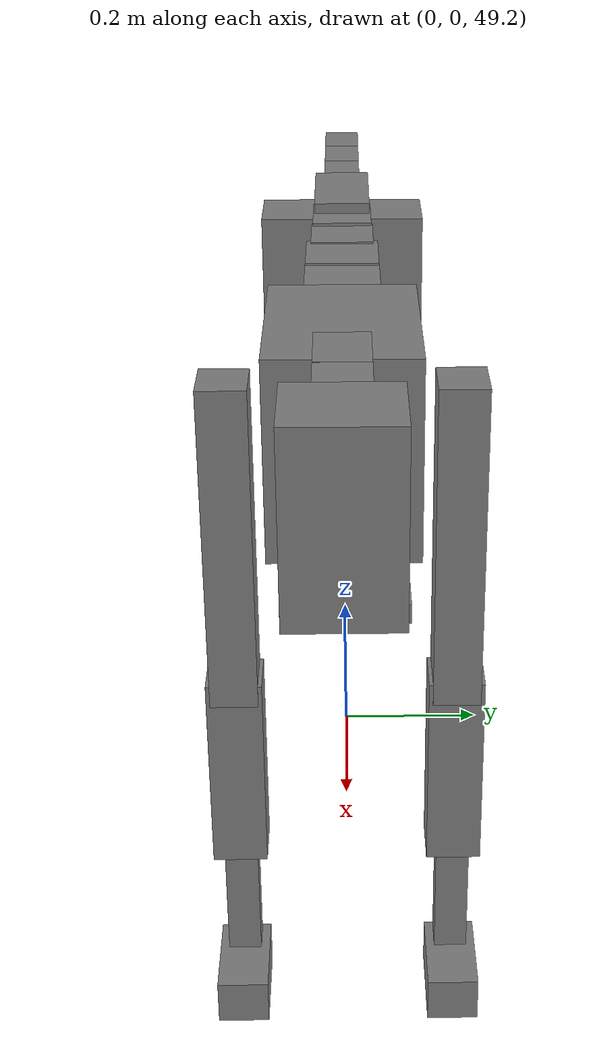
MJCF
<mujoco model="dog">

    <default>
        <joint armature="0.02" stiffness="1" damping="0.2" limited="true"/>
        <geom condim="3" friction="1 0.05 0.05" margin="0.01"/>
        <motor ctrllimited="true" ctrlrange="-1.0 1.0" forcelimited="true" gear="50"/>
    </default>

    <compiler inertiafromgeom="true" angle="radian"/>

    <option timestep="0.016" iterations="50" tolerance="1e-10" solver="Newton" jacobian="dense" cone="pyramidal"/>

    <size nconmax="20000" njmax="60000" nstack="5000000"/>
    <visual>
        <map force="0.1" zfar="30"/>
        <rgba haze="0.15 0.25 0.35 1"/>
        <quality shadowsize="2048"/>
        <global offwidth="800" offheight="800"/>
    </visual>

    <asset>
        <texture type="skybox" builtin="gradient" rgb1="0.3 0.5 0.7" rgb2="0 0 0" width="512" height="512"/>
        <texture name="texplane" type="2d" builtin="checker" rgb1=".2 .3 .4" rgb2=".1 0.15 0.2" width="512" height="512"
                 mark="cross" markrgb=".8 .8 .8"/>
        <texture name="texgeom" type="cube" builtin="flat" mark="cross" width="127" height="1278" rgb1="0.8 0.6 0.4"
                 rgb2="0.8 0.6 0.4" markrgb="1 1 1" random="0.01"/>

        <material name="matplane" reflectance="0.3" texture="texplane" texrepeat="1 1" texuniform="true"/>
        <material name="matgeom" texture="texgeom" texuniform="true" rgba="0.8 0.6 .4 1"/>
    </asset>

    <worldbody>
        <geom name="floor" pos="0 0 0" size="0 0 .25" type="plane" material="matplane" condim="3"/>

        <light directional="false" diffuse=".2 .2 .2" specular="0 0 0" pos="0 0 5" dir="0 0 -1" castshadow="false"/>
        <light mode="targetbodycom" target="torso" directional="false" diffuse=".8 .8 .8" specular="0.3 0.3 0.3"
               pos="0 0 4.0" dir="0 0 -1"/>

        <body name="root" pos="0 0 50">
            <freejoint name="root_1"/>
            <geom type="box" pos="0 0 -0.02" size="0.0774  0.0358  0.063" density="2030"/>

            <body name="spine1" pos="0.054 0 0">
                <joint name="spine1_y" axis="0 1 0" range="0 0.7" limited="true"/>
                <geom type="box" pos="0.02375 0 -0.03" size="0.04375  0.0375  0.05985" density="2030"/>

                <body name="spine2" pos="0.0612 0 0">
                    <joint name="spine2_y" axis="0 1 0" range="-0.15 0.15" limited="true"/>
                    <geom type="box" pos="0.03555  0  -0.04" size="0.04055  0.039  0.06615" density="2030"/>

                    <body name="spine3" pos="0.0730 0 0">
                        <joint name="spine3_y" axis="0 1 0" range="-0.15 0.15" limited="true"/>
                        <geom type="box" pos="0.03555  0  -0.057" size="0.04555  0.0445  0.081" density="2030"/>

                        <body name="spine4" pos="0.0780 0 0">
                            <joint name="spine4_y" axis="0 1 0" range="-0.15 0.15" limited="true"/>
                            <geom type="box" pos="0.05265  0  -0.07" size="0.05265  0.045  0.09135" density="2030"/>

                            <body name="torso" pos="0.1082 0 0">
                                <joint name="torso_y" axis="0 1 0" range="-0.15 0.15" limited="true"/>
                                <geom type="box" pos="0.11925  0  -0.085" size="0.11925  0.085  0.11745"
                                      density="2030"/>

                                <body name="neck1" pos="0.2160  0   0.0180">
                                    <joint name="neck1_y" axis="0 1 0" range="-1.2  -1" limited="true"/>
                                    <geom type="box" pos="0.0423  0  0" size="0.0423  0.03  0.036" density="2325"/>

                                    <body name="neck2" pos="0.0853  0  0">
                                        <joint name="neck2_y" axis="0 1 0" range="0.1  0" limited="true"/>
                                        <geom type="box" pos="0.0423  0  0" size="0.0423  0.03  0.036" density="2325"/>

                                        <body name="head" pos="0.0853  0  0">
                                            <joint name="head_y" axis="0 1 0" range="-0.3  -0.2" limited="true"/>
                                            <geom type="box" pos="0.0531  0  -0.055" size="0.0531  0.06  0.1044"
                                                  density="4030"/>

                                        </body>
                                    </body>
                                </body>

                                <body name="front_shoulder" pos="0.156  0   -0.0480">
                                    <joint name="front_shoulder_y" axis="0 1 0" range="-1 1.5" limited="true"/>
                                    <geom type="box" pos="0 0.13 -0.1715" size="0.0329  0.0281  0.1981" density="1158"/>
                                    <geom type="box" pos="0 -0.13 -0.1715" size="0.0329  0.0281  0.1981"
                                          density="1158"/>

                                    <body name="front_elbow" pos="0  0  -0.3430">
                                        <joint name="front_elbow_y" axis="0 1 0" range="-2 0" limited="true"/>
                                        <geom type="box" pos="0 0.13 -0.1237" size="0.0319  0.0327  0.1237"
                                              density="1081"/>
                                        <geom type="box" pos="0 -0.13 -0.1237" size="0.0319  0.0327  0.1237"
                                              density="1081"/>

                                        <body name="front_wrist" pos="0  0  -0.2475">
                                            <joint name="front_wrist_y" axis="0 1 0" range="-0.2 0" limited="true"/>
                                            <geom type="box" pos="0 0.13 -0.0821" size="0.0181  0.0202  0.0952"
                                                  density="1664"/>
                                            <geom type="box" pos="0 -0.13 -0.0821" size="0.0181  0.0202  0.0952"
                                                  density="1664"/>

                                            <body name="front_finger_end" pos="0  0  -0.1641">
                                                <joint name="front_finger_y" axis="0 1 0" range="-0.4 1"
                                                       limited="true"/>
                                                <geom type="box" pos="0.0310  0.13  -0.0135"
                                                      size="0.0568  0.0310  0.0285" density="1515"/>
                                                <geom type="box" pos="0.0310  -0.13  -0.0135"
                                                      size="0.0568  0.0310  0.0285" density="1515"/>

                                            </body>

                                        </body>
                                    </body>
                                </body>

                            </body>
                        </body>
                    </body>
                </body>
            </body>

            <body name="back_hip" pos="-0.03 0 -0.018">
                <joint name="back_hip_y" axis="0 1 0" range="-1.5 0.3" limited="true"/>
                <geom type="box" pos="0 0.07 -0.0912" size="0.0486  0.0381  0.1140" density="1154"/>
                <geom type="box" pos="0 -0.07 -0.0912" size="0.0486  0.0381  0.1140" density="1154"/>

                <body name="back_knee" pos="0  0  -0.1824">
                    <joint name="back_knee_y" axis="0 1 0" range="0 2.8" limited="true"/>
                    <geom type="box" pos="0 0.07 -0.1078" size="0.0348  0.0343  0.1233" density="1227"/>
                    <geom type="box" pos="0 -0.07 -0.1078" size="0.0348  0.0343  0.1233" density="1227"/>

                    <body name="back_ankle" pos="0  0  -0.2156">
                        <joint name="back_ankle_y" axis="0 1 0" range="-2.2 0" limited="true"/>
                        <geom type="box" pos="0 0.07 -0.0853" size="0.0210  0.0210  0.0966" density="1284"/>
                        <geom type="box" pos="0 -0.07 -0.0853" size="0.0210  0.0210  0.0966" density="1284"/>

                        <body name="back_toe_end" pos="0  0  -0.1707">
                            <joint name="back_toe_y" axis="0 1 0" range="-0.4 1" limited="true"/>
                            <geom type="box" pos="0.0284  0.07  -0.0013" size="0.0520  0.0284  0.0163" density="1515"/>
                            <geom type="box" pos="0.0284  -0.07  -0.0013" size="0.0520  0.0284  0.0163" density="1515"/>

                        </body>
                    </body>
                </body>
            </body>

            <body name="tail1" pos="-0.074 0 -0.006">
                <joint name="tail1_y" axis="0 1 0" range="-0.2 0.2" limited="true"/>
                <geom type="box" pos="-0.0536  0  0" size="0.045  0.025  0.0175" density="1587"/>

                <body name="tail2" pos="-0.09 0 0">
                    <joint name="tail2_y" axis="0 1 0" range="-0.2 0.2" limited="true"/>
                    <geom type="box" pos="-0.0536  0  0" size="0.045  0.025  0.0175" density="1587"/>

                    <body name="tail3" pos="-0.09 0 0">
                        <joint name="tail3_y" axis="0 1 0" range="-0.2 0.2" limited="true"/>
                        <geom type="box" pos="-0.0536  0  0" size="0.045  0.025  0.0175" density="1587"/>

                        <body name="tail4" pos="-0.09 0 0">
                            <joint name="tail4_y" axis="0 1 0" range="-0.2 0.2" limited="true"/>
                            <geom type="box" pos="-0.0536  0  0" size="0.045  0.025  0.0175" density="1587"/>

                        </body>
                    </body>
                </body>
            </body>
        </body>
    </worldbody>

    <actuator>
        <motor joint="spine1_y" forcerange="-150 150     "/>
        <motor joint="spine2_y" forcerange="-150 150     "/>
        <motor joint="spine3_y" forcerange="-150 150     "/>
        <motor joint="spine4_y" forcerange="-150 150     "/>
        <motor joint="torso_y" forcerange="-150 150     "/>
        <motor joint="neck1_y" forcerange="-100 100       "/>
        <motor joint="neck2_y" forcerange="-100 100       "/>
        <motor joint="head_y" forcerange="-150 150       "/>
        <motor joint="front_shoulder_y" forcerange="-111.72 175.85"/>
        <motor joint="front_elbow_y" forcerange="-158.56 178.92"/>
        <motor joint="front_wrist_y" forcerange="-99.23 62.00"/>
        <motor joint="front_finger_y" forcerange="-55.59 69.73"/>
        <motor joint="back_hip_y" forcerange="-391.84 316.72"/>
        <motor joint="back_knee_y" forcerange="-362.53 336.89"/>
        <motor joint="back_angle_y" forcerange="-71.41 165.35"/>
        <motor joint="back_toe_y" forcerange="-23.49 123.58"/>
        <motor joint="tail1_y" forcerange="-50 50     "/>
        <motor joint="tail2_y" forcerange="-50 50     "/>
        <motor joint="tail3_y" forcerange="-50 50     "/>
        <motor joint="tail4_y" forcerange="-50 50     "/>
    </actuator>
</mujoco>
